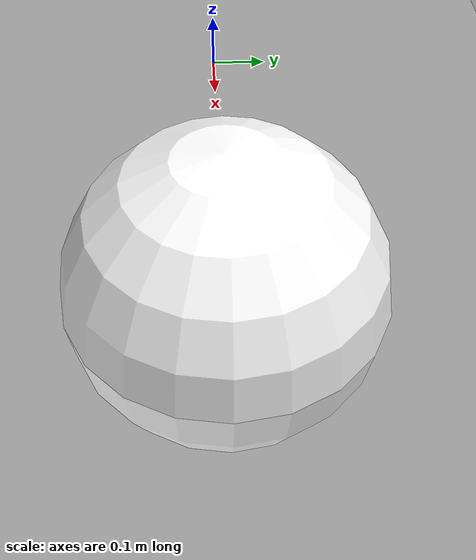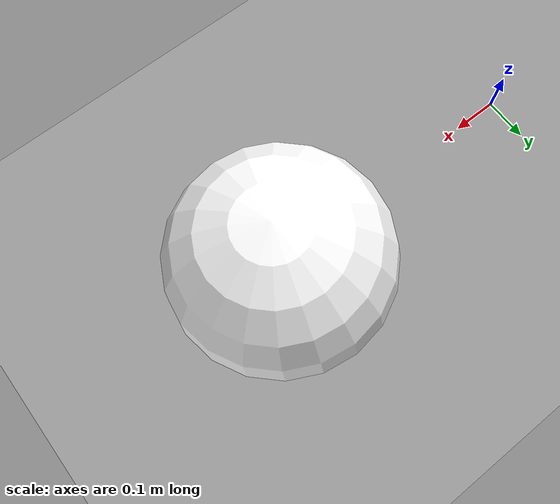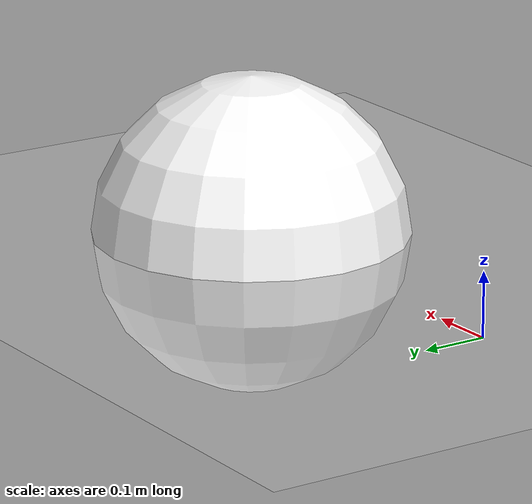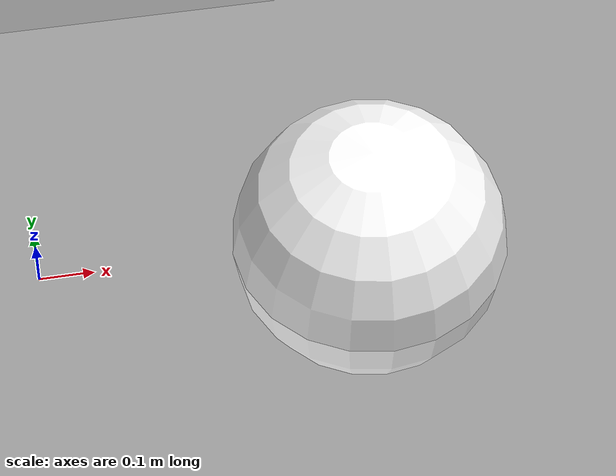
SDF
<?xml version="1.0" ?>
<sdf version="1.6">
  <world name="impedance_test">
   <include>
      <uri>model://ground_plane</uri>
    </include>
    <include>
      <uri>model://sun</uri>
    </include>
    <!--Curved surface-->
    <include>
      <uri>file:///../models/curved_surface</uri>
      <pose>0.6 0 0 0 0 0</pose>
      <static>1</static>
    </include>
  </world>
</sdf>

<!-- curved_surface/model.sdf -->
<sdf version='1.6'>
  <model name='curved_surface'>
    <link name='link'>
      <pose>0 0 0 0 0 0</pose>
      <enable_wind>0</enable_wind>
      <visual name='visual'>
        <geometry>
          <sphere>
            <radius>0.25</radius> <!-- Radius of the sphere -->
          </sphere>
        </geometry>
        <material>
          <ambient>1 1 1 1</ambient>
          <diffuse>1 1 1 1</diffuse>
          <specular>0.1 0.1 0.1 1</specular>
        </material>
        <pose>0 0 0 0 0 0</pose>
        <transparency>0</transparency>
        <cast_shadows>1</cast_shadows>
      </visual>
      <collision name='collision'>
        <laser_retro>0</laser_retro>
        <max_contacts>10</max_contacts>
        <pose>0 0 0 0 0 0</pose>
        <geometry>
          <sphere>
            <radius>0.25</radius> <!-- Radius of the sphere -->
          </sphere>
        </geometry>
        <surface>
          <!--NOTE: Uses dynamic friction of brick on a wood surface
          see https://www.engineeringtoolbox.com/friction-coefficients-d_778.html
          -->
          <friction>
            <ode>
              <mu>0.6</mu>
              <mu2>0.6</mu2>
              <fdir1>0 0 0</fdir1>
              <slip1>0</slip1>
              <slip2>0</slip2>
            </ode>
            <torsional>
              <coefficient>1</coefficient>
              <patch_radius>0</patch_radius>
              <surface_radius>0</surface_radius>
              <use_patch_radius>1</use_patch_radius>
              <ode>
                <slip>0</slip>
              </ode>
            </torsional>
          </friction>
          <bounce>
            <restitution_coefficient>0</restitution_coefficient>
            <threshold>1e+06</threshold>
          </bounce>
          <contact>
            <collide_without_contact>0</collide_without_contact>
            <collide_without_contact_bitmask>1</collide_without_contact_bitmask>
            <collide_bitmask>1</collide_bitmask>
            <ode>
              <soft_cfm>0</soft_cfm>
              <soft_erp>0.2</soft_erp>
              <kp>1e+13</kp>
              <kd>1</kd>
              <max_vel>0</max_vel>
              <min_depth>0.003</min_depth>
            </ode>
            <bullet>
              <split_impulse>1</split_impulse>
              <split_impulse_penetration_threshold>-0.01</split_impulse_penetration_threshold>
              <soft_cfm>0</soft_cfm>
              <soft_erp>0.2</soft_erp>
              <kp>1e+13</kp>
              <kd>1</kd>
            </bullet>
          </contact>
        </surface>
      </collision>
    </link>
    <static>0</static>
    <allow_auto_disable>1</allow_auto_disable>
  </model>
</sdf>
